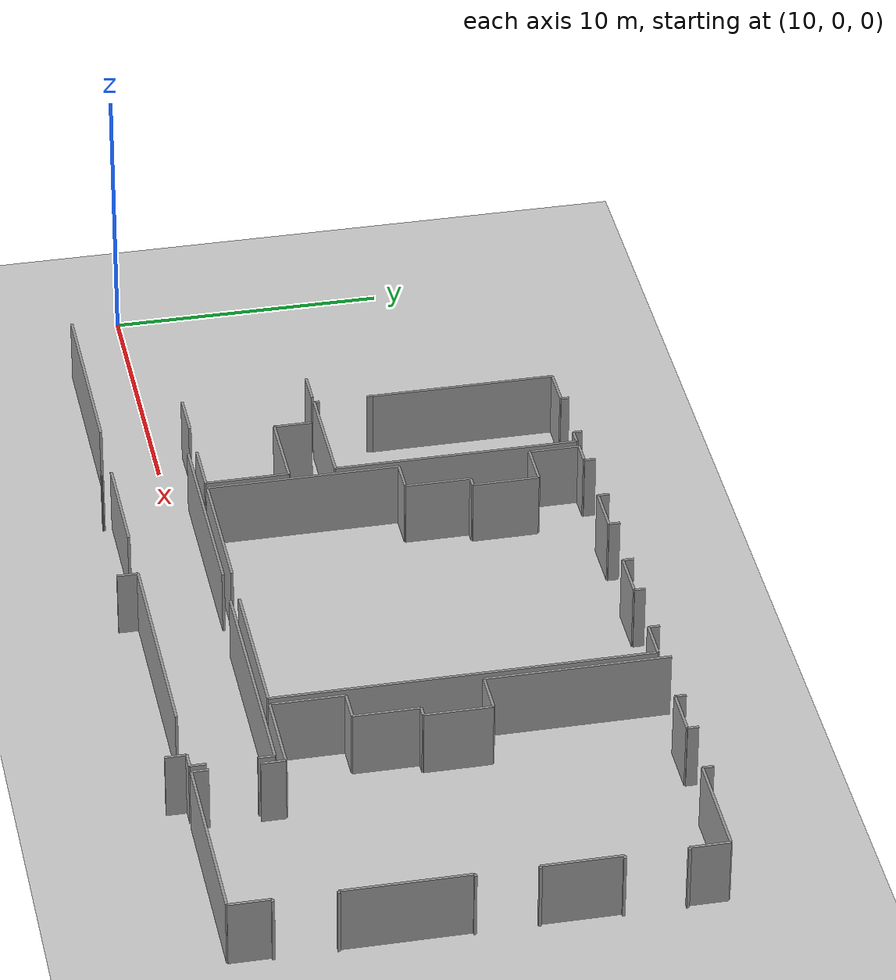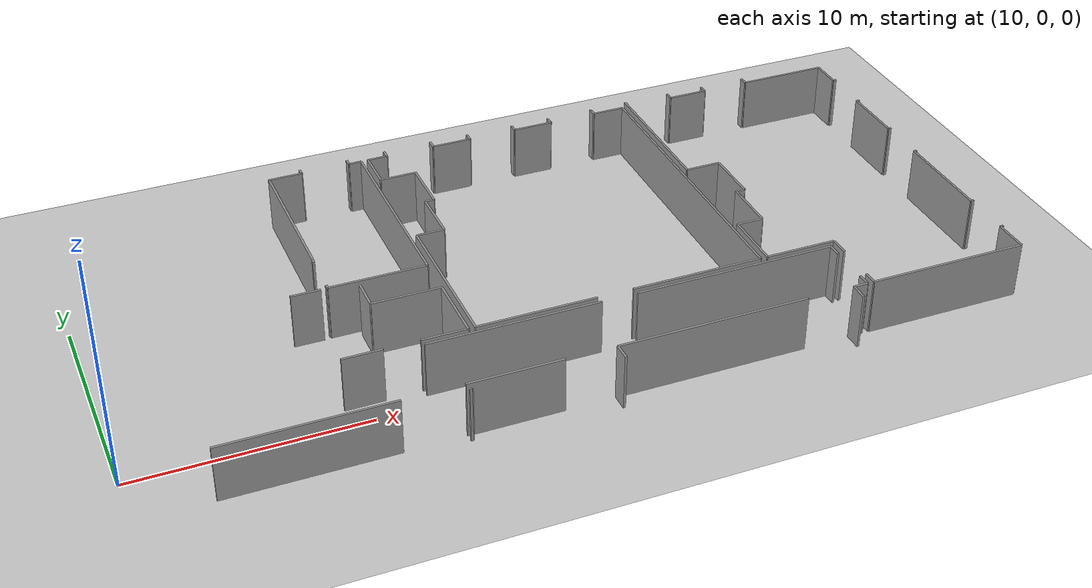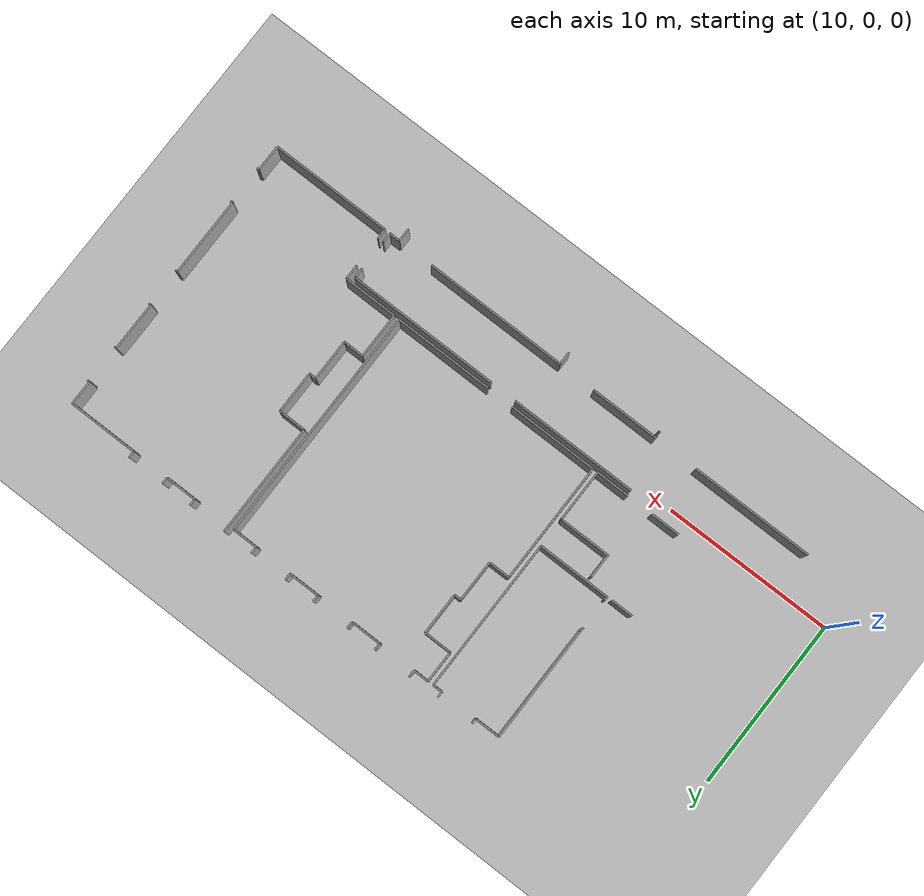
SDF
<sdf version="1.6">
 <world name="default">
  <model name="ground_plane">
   <static>1</static>
   <link name="link">
    <collision name="collision">
     <geometry><plane><normal>0 0 1</normal><size>100 100</size></plane></geometry>
     <surface><friction><ode><mu>100</mu><mu2>50</mu2></ode></friction></surface>
    </collision>
    <visual name="visual">
     <cast_shadows>0</cast_shadows>
     <geometry><plane><normal>0 0 1</normal><size>100 100</size></plane></geometry>
     <material>
      <script><uri>file://media/materials/scripts/gazebo.material</uri><name>Gazebo/Grey</name></script>
     </material>
    </visual>
   </link>
  </model>
  <model name="0510032270_A_40_1_104">
   <static>1</static>
   <link name="Wall_315">
    <collision name="Wall_315_Collision">
     <geometry><box><size>0.0939044690395 0.1 2.5</size></box></geometry>
     <pose>0.0469522345197 0 1.25 0 0 0</pose>
    </collision>
    <visual name="Wall_315_Visual">
     <pose>0.0469522345197 0 1.25 0 0 0</pose>
     <geometry><box><size>0.0939044690395 0.1 2.5</size></box></geometry>
     <material>
      <script><uri>file://media/materials/scripts/gazebo.material</uri><name>Gazebo/Grey</name></script>
      <ambient>1 1 1 1</ambient>
     </material>
    </visual>
    <pose>70.7474236629 -17.7504860414 0 0 0 0.0</pose>
   </link>
   <link name="Wall_316">
    <collision name="Wall_316_Collision">
     <geometry><box><size>0.0261763472559 0.1 2.5</size></box></geometry>
     <pose>0.013088173628 0 1.25 0 0 0</pose>
    </collision>
    <visual name="Wall_316_Visual">
     <pose>0.013088173628 0 1.25 0 0 0</pose>
     <geometry><box><size>0.0261763472559 0.1 2.5</size></box></geometry>
     <material>
      <script><uri>file://media/materials/scripts/gazebo.material</uri><name>Gazebo/Grey</name></script>
      <ambient>1 1 1 1</ambient>
     </material>
    </visual>
    <pose>70.8413281319 -17.7504860414 0 0 0 -1.57079632679</pose>
   </link>
   <link name="Wall_379">
    <collision name="Wall_379_Collision">
     <geometry><box><size>2.6602030573 0.1 2.5</size></box></geometry>
     <pose>1.33010152865 0 1.25 0 0 0</pose>
    </collision>
    <visual name="Wall_379_Visual">
     <pose>1.33010152865 0 1.25 0 0 0</pose>
     <geometry><box><size>2.6602030573 0.1 2.5</size></box></geometry>
     <material>
      <script><uri>file://media/materials/scripts/gazebo.material</uri><name>Gazebo/Grey</name></script>
      <ambient>1 1 1 1</ambient>
     </material>
    </visual>
    <pose>85.2550923161 -14.1554315921 0 0 0 1.57079632679</pose>
   </link>
   <link name="Wall_380">
    <collision name="Wall_380_Collision">
     <geometry><box><size>1.18162064628 0.1 2.5</size></box></geometry>
     <pose>0.590810323138 0 1.25 0 0 0</pose>
    </collision>
    <visual name="Wall_380_Visual">
     <pose>0.590810323138 0 1.25 0 0 0</pose>
     <geometry><box><size>1.18162064628 0.1 2.5</size></box></geometry>
     <material>
      <script><uri>file://media/materials/scripts/gazebo.material</uri><name>Gazebo/Grey</name></script>
      <ambient>1 1 1 1</ambient>
     </material>
    </visual>
    <pose>85.2550923161 -11.4952285348 0 0 0 0.0</pose>
   </link>
   <link name="Wall_381">
    <collision name="Wall_381_Collision">
     <geometry><box><size>2.3980583758 0.1 2.5</size></box></geometry>
     <pose>1.1990291879 0 1.25 0 0 0</pose>
    </collision>
    <visual name="Wall_381_Visual">
     <pose>1.1990291879 0 1.25 0 0 0</pose>
     <geometry><box><size>2.3980583758 0.1 2.5</size></box></geometry>
     <material>
      <script><uri>file://media/materials/scripts/gazebo.material</uri><name>Gazebo/Grey</name></script>
      <ambient>1 1 1 1</ambient>
     </material>
    </visual>
    <pose>86.4367129624 -11.4952285348 0 0 0 1.57079632679</pose>
   </link>
   <link name="Wall_382">
    <collision name="Wall_382_Collision">
     <geometry><box><size>0.401158875179 0.1 2.5</size></box></geometry>
     <pose>0.20057943759 0 1.25 0 0 0</pose>
    </collision>
    <visual name="Wall_382_Visual">
     <pose>0.20057943759 0 1.25 0 0 0</pose>
     <geometry><box><size>0.401158875179 0.1 2.5</size></box></geometry>
     <material>
      <script><uri>file://media/materials/scripts/gazebo.material</uri><name>Gazebo/Grey</name></script>
      <ambient>1 1 1 1</ambient>
     </material>
    </visual>
    <pose>86.4367129624 -9.09717015896 0 0 0 0.0</pose>
   </link>
   <link name="Wall_383">
    <collision name="Wall_383_Collision">
     <geometry><box><size>2.4509193489 0.1 2.5</size></box></geometry>
     <pose>1.22545967445 0 1.25 0 0 0</pose>
    </collision>
    <visual name="Wall_383_Visual">
     <pose>1.22545967445 0 1.25 0 0 0</pose>
     <geometry><box><size>2.4509193489 0.1 2.5</size></box></geometry>
     <material>
      <script><uri>file://media/materials/scripts/gazebo.material</uri><name>Gazebo/Grey</name></script>
      <ambient>1 1 1 1</ambient>
     </material>
    </visual>
    <pose>86.8378718376 -9.09717015896 0 0 0 1.57079632679</pose>
   </link>
   <link name="Wall_384">
    <collision name="Wall_384_Collision">
     <geometry><box><size>1.58252538216 0.1 2.5</size></box></geometry>
     <pose>0.791262691081 0 1.25 0 0 0</pose>
    </collision>
    <visual name="Wall_384_Visual">
     <pose>0.791262691081 0 1.25 0 0 0</pose>
     <geometry><box><size>1.58252538216 0.1 2.5</size></box></geometry>
     <material>
      <script><uri>file://media/materials/scripts/gazebo.material</uri><name>Gazebo/Grey</name></script>
      <ambient>1 1 1 1</ambient>
     </material>
    </visual>
    <pose>86.8378718376 -6.64625081007 0 0 0 3.14159265359</pose>
   </link>
   <link name="Wall_385">
    <collision name="Wall_385_Collision">
     <geometry><box><size>6.63240021856 0.1 2.5</size></box></geometry>
     <pose>3.31620010928 0 1.25 0 0 0</pose>
    </collision>
    <visual name="Wall_385_Visual">
     <pose>3.31620010928 0 1.25 0 0 0</pose>
     <geometry><box><size>6.63240021856 0.1 2.5</size></box></geometry>
     <material>
      <script><uri>file://media/materials/scripts/gazebo.material</uri><name>Gazebo/Grey</name></script>
      <ambient>1 1 1 1</ambient>
     </material>
    </visual>
    <pose>85.2553464554 -6.64625081007 0 0 0 1.57079632679</pose>
   </link>
   <link name="Wall_386">
    <collision name="Wall_386_Collision">
     <geometry><box><size>0.392645208839 0.1 2.5</size></box></geometry>
     <pose>0.196322604419 0 1.25 0 0 0</pose>
    </collision>
    <visual name="Wall_386_Visual">
     <pose>0.196322604419 0 1.25 0 0 0</pose>
     <geometry><box><size>0.392645208839 0.1 2.5</size></box></geometry>
     <material>
      <script><uri>file://media/materials/scripts/gazebo.material</uri><name>Gazebo/Grey</name></script>
      <ambient>1 1 1 1</ambient>
     </material>
    </visual>
    <pose>87.4634357091 -0.0138505915092 0 0 0 -1.57079632679</pose>
   </link>
   <link name="Wall_387">
    <collision name="Wall_387_Collision">
     <geometry><box><size>1.80286414984 0.1 2.5</size></box></geometry>
     <pose>0.90143207492 0 1.25 0 0 0</pose>
    </collision>
    <visual name="Wall_387_Visual">
     <pose>0.90143207492 0 1.25 0 0 0</pose>
     <geometry><box><size>1.80286414984 0.1 2.5</size></box></geometry>
     <material>
      <script><uri>file://media/materials/scripts/gazebo.material</uri><name>Gazebo/Grey</name></script>
      <ambient>1 1 1 1</ambient>
     </material>
    </visual>
    <pose>87.4634357091 -0.406495800348 0 0 0 0.0</pose>
   </link>
   <link name="Wall_388">
    <collision name="Wall_388_Collision">
     <geometry><box><size>0.398998691183 0.1 2.5</size></box></geometry>
     <pose>0.199499345591 0 1.25 0 0 0</pose>
    </collision>
    <visual name="Wall_388_Visual">
     <pose>0.199499345591 0 1.25 0 0 0</pose>
     <geometry><box><size>0.398998691183 0.1 2.5</size></box></geometry>
     <material>
      <script><uri>file://media/materials/scripts/gazebo.material</uri><name>Gazebo/Grey</name></script>
      <ambient>1 1 1 1</ambient>
     </material>
    </visual>
    <pose>89.266299859 -0.406495800348 0 0 0 1.57079632679</pose>
   </link>
   <link name="Wall_389">
    <collision name="Wall_389_Collision">
     <geometry><box><size>0.398490412595 0.1 2.5</size></box></geometry>
     <pose>0.199245206298 0 1.25 0 0 0</pose>
    </collision>
    <visual name="Wall_389_Visual">
     <pose>0.199245206298 0 1.25 0 0 0</pose>
     <geometry><box><size>0.398490412595 0.1 2.5</size></box></geometry>
     <material>
      <script><uri>file://media/materials/scripts/gazebo.material</uri><name>Gazebo/Grey</name></script>
      <ambient>1 1 1 1</ambient>
     </material>
    </visual>
    <pose>91.4592678247 -0.00749710916553 0 0 0 -1.57079632679</pose>
   </link>
   <link name="Wall_390">
    <collision name="Wall_390_Collision">
     <geometry><box><size>4.04081477058 0.1 2.5</size></box></geometry>
     <pose>2.02040738529 0 1.25 0 0 0</pose>
    </collision>
    <visual name="Wall_390_Visual">
     <pose>2.02040738529 0 1.25 0 0 0</pose>
     <geometry><box><size>4.04081477058 0.1 2.5</size></box></geometry>
     <material>
      <script><uri>file://media/materials/scripts/gazebo.material</uri><name>Gazebo/Grey</name></script>
      <ambient>1 1 1 1</ambient>
     </material>
    </visual>
    <pose>91.4592678247 -0.405987521761 0 0 0 0.0</pose>
   </link>
   <link name="Wall_391">
    <collision name="Wall_391_Collision">
     <geometry><box><size>1.42610264686 0.1 2.5</size></box></geometry>
     <pose>0.71305132343 0 1.25 0 0 0</pose>
    </collision>
    <visual name="Wall_391_Visual">
     <pose>0.71305132343 0 1.25 0 0 0</pose>
     <geometry><box><size>1.42610264686 0.1 2.5</size></box></geometry>
     <material>
      <script><uri>file://media/materials/scripts/gazebo.material</uri><name>Gazebo/Grey</name></script>
      <ambient>1 1 1 1</ambient>
     </material>
    </visual>
    <pose>95.5000825953 -0.405987521761 0 0 0 -1.57079632679</pose>
   </link>
   <link name="Wall_392">
    <collision name="Wall_392_Collision">
     <geometry><box><size>0.149306835076 0.1 2.5</size></box></geometry>
     <pose>0.0746534175382 0 1.25 0 0 0</pose>
    </collision>
    <visual name="Wall_392_Visual">
     <pose>0.0746534175382 0 1.25 0 0 0</pose>
     <geometry><box><size>0.149306835076 0.1 2.5</size></box></geometry>
     <material>
      <script><uri>file://media/materials/scripts/gazebo.material</uri><name>Gazebo/Grey</name></script>
      <ambient>1 1 1 1</ambient>
     </material>
    </visual>
    <pose>95.5000825953 -1.83209016862 0 0 0 0.0</pose>
   </link>
   <link name="Wall_393">
    <collision name="Wall_393_Collision">
     <geometry><box><size>0.144859397436 0.1 2.5</size></box></geometry>
     <pose>0.0724296987179 0 1.25 0 0 0</pose>
    </collision>
    <visual name="Wall_393_Visual">
     <pose>0.0724296987179 0 1.25 0 0 0</pose>
     <geometry><box><size>0.144859397436 0.1 2.5</size></box></geometry>
     <material>
      <script><uri>file://media/materials/scripts/gazebo.material</uri><name>Gazebo/Grey</name></script>
      <ambient>1 1 1 1</ambient>
     </material>
    </visual>
    <pose>95.6493894303 -4.03611319364 0 0 0 3.14159265359</pose>
   </link>
   <link name="Wall_394">
    <collision name="Wall_394_Collision">
     <geometry><box><size>2.85360305984 0.1 2.5</size></box></geometry>
     <pose>1.42680152992 0 1.25 0 0 0</pose>
    </collision>
    <visual name="Wall_394_Visual">
     <pose>1.42680152992 0 1.25 0 0 0</pose>
     <geometry><box><size>2.85360305984 0.1 2.5</size></box></geometry>
     <material>
      <script><uri>file://media/materials/scripts/gazebo.material</uri><name>Gazebo/Grey</name></script>
      <ambient>1 1 1 1</ambient>
     </material>
    </visual>
    <pose>95.5045300329 -4.03611319364 0 0 0 -1.57079632679</pose>
   </link>
   <link name="Wall_395">
    <collision name="Wall_395_Collision">
     <geometry><box><size>0.137489357917 0.1 2.5</size></box></geometry>
     <pose>0.0687446789585 0 1.25 0 0 0</pose>
    </collision>
    <visual name="Wall_395_Visual">
     <pose>0.0687446789585 0 1.25 0 0 0</pose>
     <geometry><box><size>0.137489357917 0.1 2.5</size></box></geometry>
     <material>
      <script><uri>file://media/materials/scripts/gazebo.material</uri><name>Gazebo/Grey</name></script>
      <ambient>1 1 1 1</ambient>
     </material>
    </visual>
    <pose>95.5045300329 -6.88971625348 0 0 0 0.0</pose>
   </link>
   <link name="Wall_396">
    <collision name="Wall_396_Collision">
     <geometry><box><size>0.137235218623 0.1 2.5</size></box></geometry>
     <pose>0.0686176093117 0 1.25 0 0 0</pose>
    </collision>
    <visual name="Wall_396_Visual">
     <pose>0.0686176093117 0 1.25 0 0 0</pose>
     <geometry><box><size>0.137235218623 0.1 2.5</size></box></geometry>
     <material>
      <script><uri>file://media/materials/scripts/gazebo.material</uri><name>Gazebo/Grey</name></script>
      <ambient>1 1 1 1</ambient>
     </material>
    </visual>
    <pose>95.6420193908 -9.09310393026 0 0 0 3.14159265359</pose>
   </link>
   <link name="Wall_397">
    <collision name="Wall_397_Collision">
     <geometry><box><size>4.58073370014 0.1 2.5</size></box></geometry>
     <pose>2.29036685007 0 1.25 0 0 0</pose>
    </collision>
    <visual name="Wall_397_Visual">
     <pose>2.29036685007 0 1.25 0 0 0</pose>
     <geometry><box><size>4.58073370014 0.1 2.5</size></box></geometry>
     <material>
      <script><uri>file://media/materials/scripts/gazebo.material</uri><name>Gazebo/Grey</name></script>
      <ambient>1 1 1 1</ambient>
     </material>
    </visual>
    <pose>95.5047841722 -9.09310393026 0 0 0 -1.57079632679</pose>
   </link>
   <link name="Wall_398">
    <collision name="Wall_398_Collision">
     <geometry><box><size>0.137743497211 0.1 2.5</size></box></geometry>
     <pose>0.0688717486054 0 1.25 0 0 0</pose>
    </collision>
    <visual name="Wall_398_Visual">
     <pose>0.0688717486054 0 1.25 0 0 0</pose>
     <geometry><box><size>0.137743497211 0.1 2.5</size></box></geometry>
     <material>
      <script><uri>file://media/materials/scripts/gazebo.material</uri><name>Gazebo/Grey</name></script>
      <ambient>1 1 1 1</ambient>
     </material>
    </visual>
    <pose>95.5047841722 -13.6738376304 0 0 0 0.0</pose>
   </link>
   <link name="Wall_399">
    <collision name="Wall_399_Collision">
     <geometry><box><size>0.139903681208 0.1 2.5</size></box></geometry>
     <pose>0.0699518406038 0 1.25 0 0 0</pose>
    </collision>
    <visual name="Wall_399_Visual">
     <pose>0.0699518406038 0 1.25 0 0 0</pose>
     <geometry><box><size>0.139903681208 0.1 2.5</size></box></geometry>
     <material>
      <script><uri>file://media/materials/scripts/gazebo.material</uri><name>Gazebo/Grey</name></script>
      <ambient>1 1 1 1</ambient>
     </material>
    </visual>
    <pose>95.6425276694 -15.8800208394 0 0 0 3.14159265359</pose>
   </link>
   <link name="Wall_400">
    <collision name="Wall_400_Collision">
     <geometry><box><size>1.52267557848 0.1 2.5</size></box></geometry>
     <pose>0.761337789242 0 1.25 0 0 0</pose>
    </collision>
    <visual name="Wall_400_Visual">
     <pose>0.761337789242 0 1.25 0 0 0</pose>
     <geometry><box><size>1.52267557848 0.1 2.5</size></box></geometry>
     <material>
      <script><uri>file://media/materials/scripts/gazebo.material</uri><name>Gazebo/Grey</name></script>
      <ambient>1 1 1 1</ambient>
     </material>
    </visual>
    <pose>95.5026239882 -15.8800208394 0 0 0 -1.57079632679</pose>
   </link>
   <link name="Wall_401">
    <collision name="Wall_401_Collision">
     <geometry><box><size>7.10281205129 0.1 2.5</size></box></geometry>
     <pose>3.55140602564 0 1.25 0 0 0</pose>
    </collision>
    <visual name="Wall_401_Visual">
     <pose>3.55140602564 0 1.25 0 0 0</pose>
     <geometry><box><size>7.10281205129 0.1 2.5</size></box></geometry>
     <material>
      <script><uri>file://media/materials/scripts/gazebo.material</uri><name>Gazebo/Grey</name></script>
      <ambient>1 1 1 1</ambient>
     </material>
    </visual>
    <pose>95.5026239882 -17.4026964179 0 0 0 3.14159265359</pose>
   </link>
   <link name="Wall_402">
    <collision name="Wall_402_Collision">
     <geometry><box><size>0.601293569005 0.1 2.5</size></box></geometry>
     <pose>0.300646784503 0 1.25 0 0 0</pose>
    </collision>
    <visual name="Wall_402_Visual">
     <pose>0.300646784503 0 1.25 0 0 0</pose>
     <geometry><box><size>0.601293569005 0.1 2.5</size></box></geometry>
     <material>
      <script><uri>file://media/materials/scripts/gazebo.material</uri><name>Gazebo/Grey</name></script>
      <ambient>1 1 1 1</ambient>
     </material>
    </visual>
    <pose>88.3998119369 -17.4026964179 0 0 0 1.57079632679</pose>
   </link>
   <link name="Wall_403">
    <collision name="Wall_403_Collision">
     <geometry><box><size>0.869537593555 0.1 2.5</size></box></geometry>
     <pose>0.434768796778 0 1.25 0 0 0</pose>
    </collision>
    <visual name="Wall_403_Visual">
     <pose>0.434768796778 0 1.25 0 0 0</pose>
     <geometry><box><size>0.869537593555 0.1 2.5</size></box></geometry>
     <material>
      <script><uri>file://media/materials/scripts/gazebo.material</uri><name>Gazebo/Grey</name></script>
      <ambient>1 1 1 1</ambient>
     </material>
    </visual>
    <pose>88.3998119369 -15.0268752303 0 0 0 1.57079632679</pose>
   </link>
   <link name="Wall_404">
    <collision name="Wall_404_Collision">
     <geometry><box><size>3.14472019846 0.1 2.5</size></box></geometry>
     <pose>1.57236009923 0 1.25 0 0 0</pose>
    </collision>
    <visual name="Wall_404_Visual">
     <pose>1.57236009923 0 1.25 0 0 0</pose>
     <geometry><box><size>3.14472019846 0.1 2.5</size></box></geometry>
     <material>
      <script><uri>file://media/materials/scripts/gazebo.material</uri><name>Gazebo/Grey</name></script>
      <ambient>1 1 1 1</ambient>
     </material>
    </visual>
    <pose>88.3998119369 -14.1573376368 0 0 0 3.14098654408</pose>
   </link>
   <link name="Wall_405">
    <collision name="Wall_405_Collision">
     <geometry><box><size>7.04385173514 0.1 2.5</size></box></geometry>
     <pose>3.52192586757 0 1.25 0 0 0</pose>
    </collision>
    <visual name="Wall_405_Visual">
     <pose>3.52192586757 0 1.25 0 0 0</pose>
     <geometry><box><size>7.04385173514 0.1 2.5</size></box></geometry>
     <material>
      <script><uri>file://media/materials/scripts/gazebo.material</uri><name>Gazebo/Grey</name></script>
      <ambient>1 1 1 1</ambient>
     </material>
    </visual>
    <pose>72.3413853133 -14.1513653634 0 0 0 1.57079632679</pose>
   </link>
   <link name="Wall_406">
    <collision name="Wall_406_Collision">
     <geometry><box><size>1.23498989796 0.1 2.5</size></box></geometry>
     <pose>0.617494948982 0 1.25 0 0 0</pose>
    </collision>
    <visual name="Wall_406_Visual">
     <pose>0.617494948982 0 1.25 0 0 0</pose>
     <geometry><box><size>1.23498989796 0.1 2.5</size></box></geometry>
     <material>
      <script><uri>file://media/materials/scripts/gazebo.material</uri><name>Gazebo/Grey</name></script>
      <ambient>1 1 1 1</ambient>
     </material>
    </visual>
    <pose>72.3413853133 -7.10751362822 0 0 0 0.0</pose>
   </link>
   <link name="Wall_407">
    <collision name="Wall_407_Collision">
     <geometry><box><size>2.40504720637 0.1 2.5</size></box></geometry>
     <pose>1.20252360319 0 1.25 0 0 0</pose>
    </collision>
    <visual name="Wall_407_Visual">
     <pose>1.20252360319 0 1.25 0 0 0</pose>
     <geometry><box><size>2.40504720637 0.1 2.5</size></box></geometry>
     <material>
      <script><uri>file://media/materials/scripts/gazebo.material</uri><name>Gazebo/Grey</name></script>
      <ambient>1 1 1 1</ambient>
     </material>
    </visual>
    <pose>73.5763752113 -7.10751362822 0 0 0 1.57079632679</pose>
   </link>
   <link name="Wall_408">
    <collision name="Wall_408_Collision">
     <geometry><box><size>0.396584367892 0.1 2.5</size></box></geometry>
     <pose>0.198292183946 0 1.25 0 0 0</pose>
    </collision>
    <visual name="Wall_408_Visual">
     <pose>0.198292183946 0 1.25 0 0 0</pose>
     <geometry><box><size>0.396584367892 0.1 2.5</size></box></geometry>
     <material>
      <script><uri>file://media/materials/scripts/gazebo.material</uri><name>Gazebo/Grey</name></script>
      <ambient>1 1 1 1</ambient>
     </material>
    </visual>
    <pose>73.5763752113 -4.70246642185 0 0 0 0.0</pose>
   </link>
   <link name="Wall_409">
    <collision name="Wall_409_Collision">
     <geometry><box><size>2.43414615551 0.1 2.5</size></box></geometry>
     <pose>1.21707307775 0 1.25 0 0 0</pose>
    </collision>
    <visual name="Wall_409_Visual">
     <pose>1.21707307775 0 1.25 0 0 0</pose>
     <geometry><box><size>2.43414615551 0.1 2.5</size></box></geometry>
     <material>
      <script><uri>file://media/materials/scripts/gazebo.material</uri><name>Gazebo/Grey</name></script>
      <ambient>1 1 1 1</ambient>
     </material>
    </visual>
    <pose>73.9729595791 -4.70246642185 0 0 0 1.57079632679</pose>
   </link>
   <link name="Wall_410">
    <collision name="Wall_410_Collision">
     <geometry><box><size>1.62611027104 0.1 2.5</size></box></geometry>
     <pose>0.81305513552 0 1.25 0 0 0</pose>
    </collision>
    <visual name="Wall_410_Visual">
     <pose>0.81305513552 0 1.25 0 0 0</pose>
     <geometry><box><size>1.62611027104 0.1 2.5</size></box></geometry>
     <material>
      <script><uri>file://media/materials/scripts/gazebo.material</uri><name>Gazebo/Grey</name></script>
      <ambient>1 1 1 1</ambient>
     </material>
    </visual>
    <pose>73.9729595791 -2.26832026634 0 0 0 3.14159265359</pose>
   </link>
   <link name="Wall_411">
    <collision name="Wall_411_Collision">
     <geometry><box><size>1.85076940671 0.1 2.5</size></box></geometry>
     <pose>0.925384703356 0 1.25 0 0 0</pose>
    </collision>
    <visual name="Wall_411_Visual">
     <pose>0.925384703356 0 1.25 0 0 0</pose>
     <geometry><box><size>1.85076940671 0.1 2.5</size></box></geometry>
     <material>
      <script><uri>file://media/materials/scripts/gazebo.material</uri><name>Gazebo/Grey</name></script>
      <ambient>1 1 1 1</ambient>
     </material>
    </visual>
    <pose>72.3468493081 -2.26832026634 0 0 0 1.57079632679</pose>
   </link>
   <link name="Wall_412">
    <collision name="Wall_412_Collision">
     <geometry><box><size>0.895459801517 0.1 2.5</size></box></geometry>
     <pose>0.447729900759 0 1.25 0 0 0</pose>
    </collision>
    <visual name="Wall_412_Visual">
     <pose>0.447729900759 0 1.25 0 0 0</pose>
     <geometry><box><size>0.895459801517 0.1 2.5</size></box></geometry>
     <material>
      <script><uri>file://media/materials/scripts/gazebo.material</uri><name>Gazebo/Grey</name></script>
      <ambient>1 1 1 1</ambient>
     </material>
    </visual>
    <pose>72.3468493081 -0.417550859626 0 0 0 0.0</pose>
   </link>
   <link name="Wall_413">
    <collision name="Wall_413_Collision">
     <geometry><box><size>0.417550859626 0.1 2.5</size></box></geometry>
     <pose>0.208775429813 0 1.25 0 0 0</pose>
    </collision>
    <visual name="Wall_413_Visual">
     <pose>0.208775429813 0 1.25 0 0 0</pose>
     <geometry><box><size>0.417550859626 0.1 2.5</size></box></geometry>
     <material>
      <script><uri>file://media/materials/scripts/gazebo.material</uri><name>Gazebo/Grey</name></script>
      <ambient>1 1 1 1</ambient>
     </material>
    </visual>
    <pose>73.2423091096 -0.417550859626 0 0 0 1.57079632679</pose>
   </link>
   <link name="Wall_414">
    <collision name="Wall_414_Collision">
     <geometry><box><size>0.413357561279 0.1 2.5</size></box></geometry>
     <pose>0.20667878064 0 1.25 0 0 0</pose>
    </collision>
    <visual name="Wall_414_Visual">
     <pose>0.20667878064 0 1.25 0 0 0</pose>
     <geometry><box><size>0.413357561279 0.1 2.5</size></box></geometry>
     <material>
      <script><uri>file://media/materials/scripts/gazebo.material</uri><name>Gazebo/Grey</name></script>
      <ambient>1 1 1 1</ambient>
     </material>
    </visual>
    <pose>75.4615804923 -0.0 0 0 0 -1.57079632679</pose>
   </link>
   <link name="Wall_415">
    <collision name="Wall_415_Collision">
     <geometry><box><size>1.78202472775 0.1 2.5</size></box></geometry>
     <pose>0.891012363877 0 1.25 0 0 0</pose>
    </collision>
    <visual name="Wall_415_Visual">
     <pose>0.891012363877 0 1.25 0 0 0</pose>
     <geometry><box><size>1.78202472775 0.1 2.5</size></box></geometry>
     <material>
      <script><uri>file://media/materials/scripts/gazebo.material</uri><name>Gazebo/Grey</name></script>
      <ambient>1 1 1 1</ambient>
     </material>
    </visual>
    <pose>75.4615804923 -0.413357561279 0 0 0 0.0</pose>
   </link>
   <link name="Wall_416">
    <collision name="Wall_416_Collision">
     <geometry><box><size>0.402937850236 0.1 2.5</size></box></geometry>
     <pose>0.201468925118 0 1.25 0 0 0</pose>
    </collision>
    <visual name="Wall_416_Visual">
     <pose>0.201468925118 0 1.25 0 0 0</pose>
     <geometry><box><size>0.402937850236 0.1 2.5</size></box></geometry>
     <material>
      <script><uri>file://media/materials/scripts/gazebo.material</uri><name>Gazebo/Grey</name></script>
      <ambient>1 1 1 1</ambient>
     </material>
    </visual>
    <pose>77.24360522 -0.413357561279 0 0 0 1.57079632679</pose>
   </link>
   <link name="Wall_417">
    <collision name="Wall_417_Collision">
     <geometry><box><size>0.39912576083 0.1 2.5</size></box></geometry>
     <pose>0.199562880415 0 1.25 0 0 0</pose>
    </collision>
    <visual name="Wall_417_Visual">
     <pose>0.199562880415 0 1.25 0 0 0</pose>
     <geometry><box><size>0.39912576083 0.1 2.5</size></box></geometry>
     <material>
      <script><uri>file://media/materials/scripts/gazebo.material</uri><name>Gazebo/Grey</name></script>
      <ambient>1 1 1 1</ambient>
     </material>
    </visual>
    <pose>79.4525839613 -0.0104197110436 0 0 0 -1.57079632679</pose>
   </link>
   <link name="Wall_418">
    <collision name="Wall_418_Collision">
     <geometry><box><size>1.80362656772 0.1 2.5</size></box></geometry>
     <pose>0.901813283861 0 1.25 0 0 0</pose>
    </collision>
    <visual name="Wall_418_Visual">
     <pose>0.901813283861 0 1.25 0 0 0</pose>
     <geometry><box><size>1.80362656772 0.1 2.5</size></box></geometry>
     <material>
      <script><uri>file://media/materials/scripts/gazebo.material</uri><name>Gazebo/Grey</name></script>
      <ambient>1 1 1 1</ambient>
     </material>
    </visual>
    <pose>79.4525839613 -0.409545471873 0 0 0 0.0</pose>
   </link>
   <link name="Wall_419">
    <collision name="Wall_419_Collision">
     <geometry><box><size>0.39912576083 0.1 2.5</size></box></geometry>
     <pose>0.199562880415 0 1.25 0 0 0</pose>
    </collision>
    <visual name="Wall_419_Visual">
     <pose>0.199562880415 0 1.25 0 0 0</pose>
     <geometry><box><size>0.39912576083 0.1 2.5</size></box></geometry>
     <material>
      <script><uri>file://media/materials/scripts/gazebo.material</uri><name>Gazebo/Grey</name></script>
      <ambient>1 1 1 1</ambient>
     </material>
    </visual>
    <pose>81.256210529 -0.409545471873 0 0 0 1.57079632679</pose>
   </link>
   <link name="Wall_420">
    <collision name="Wall_420_Collision">
     <geometry><box><size>0.402937850236 0.1 2.5</size></box></geometry>
     <pose>0.201468925118 0 1.25 0 0 0</pose>
    </collision>
    <visual name="Wall_420_Visual">
     <pose>0.201468925118 0 1.25 0 0 0</pose>
     <geometry><box><size>0.402937850236 0.1 2.5</size></box></geometry>
     <material>
      <script><uri>file://media/materials/scripts/gazebo.material</uri><name>Gazebo/Grey</name></script>
      <ambient>1 1 1 1</ambient>
     </material>
    </visual>
    <pose>83.4620125291 -0.0104197110436 0 0 0 -1.57079632679</pose>
   </link>
   <link name="Wall_421">
    <collision name="Wall_421_Collision">
     <geometry><box><size>1.46511302845 0.1 2.5</size></box></geometry>
     <pose>0.732556514225 0 1.25 0 0 0</pose>
    </collision>
    <visual name="Wall_421_Visual">
     <pose>0.732556514225 0 1.25 0 0 0</pose>
     <geometry><box><size>1.46511302845 0.1 2.5</size></box></geometry>
     <material>
      <script><uri>file://media/materials/scripts/gazebo.material</uri><name>Gazebo/Grey</name></script>
      <ambient>1 1 1 1</ambient>
     </material>
    </visual>
    <pose>83.4620125291 -0.413357561279 0 0 0 0.0</pose>
   </link>
   <link name="Wall_422">
    <collision name="Wall_422_Collision">
     <geometry><box><size>13.7371183145 0.1 2.5</size></box></geometry>
     <pose>6.86855915727 0 1.25 0 0 0</pose>
    </collision>
    <visual name="Wall_422_Visual">
     <pose>6.86855915727 0 1.25 0 0 0</pose>
     <geometry><box><size>13.7371183145 0.1 2.5</size></box></geometry>
     <material>
      <script><uri>file://media/materials/scripts/gazebo.material</uri><name>Gazebo/Grey</name></script>
      <ambient>1 1 1 1</ambient>
     </material>
    </visual>
    <pose>84.9271255575 -0.413357561279 0 0 0 -1.57079632679</pose>
   </link>
   <link name="Wall_423">
    <collision name="Wall_423_Collision">
     <geometry><box><size>5.78497274356 0.1 2.5</size></box></geometry>
     <pose>2.89248637178 0 1.25 0 0 0</pose>
    </collision>
    <visual name="Wall_423_Visual">
     <pose>2.89248637178 0 1.25 0 0 0</pose>
     <geometry><box><size>5.78497274356 0.1 2.5</size></box></geometry>
     <material>
      <script><uri>file://media/materials/scripts/gazebo.material</uri><name>Gazebo/Grey</name></script>
      <ambient>1 1 1 1</ambient>
     </material>
    </visual>
    <pose>84.9271255575 -14.1504758758 0 0 0 3.14159265359</pose>
   </link>
   <link name="Wall_424">
    <collision name="Wall_424_Collision">
     <geometry><box><size>5.2339988303 0.1 2.5</size></box></geometry>
     <pose>2.61699941515 0 1.25 0 0 0</pose>
    </collision>
    <visual name="Wall_424_Visual">
     <pose>2.61699941515 0 1.25 0 0 0</pose>
     <geometry><box><size>5.2339988303 0.1 2.5</size></box></geometry>
     <material>
      <script><uri>file://media/materials/scripts/gazebo.material</uri><name>Gazebo/Grey</name></script>
      <ambient>1 1 1 1</ambient>
     </material>
    </visual>
    <pose>77.575384068 -14.1504758758 0 0 0 -3.14142270943</pose>
   </link>
   <link name="Wall_465">
    <collision name="Wall_465_Collision">
     <geometry><box><size>1.2822598066 0.1 2.5</size></box></geometry>
     <pose>0.6411299033 0 1.25 0 0 0</pose>
    </collision>
    <visual name="Wall_465_Visual">
     <pose>0.6411299033 0 1.25 0 0 0</pose>
     <geometry><box><size>1.2822598066 0.1 2.5</size></box></geometry>
     <material>
      <script><uri>file://media/materials/scripts/gazebo.material</uri><name>Gazebo/Grey</name></script>
      <ambient>1 1 1 1</ambient>
     </material>
    </visual>
    <pose>67.4680102164 -9.4065847491 0 0 0 3.14159265359</pose>
   </link>
   <link name="Wall_470">
    <collision name="Wall_470_Collision">
     <geometry><box><size>6.78119877505 0.1 2.5</size></box></geometry>
     <pose>3.39059938752 0 1.25 0 0 0</pose>
    </collision>
    <visual name="Wall_470_Visual">
     <pose>3.39059938752 0 1.25 0 0 0</pose>
     <geometry><box><size>6.78119877505 0.1 2.5</size></box></geometry>
     <material>
      <script><uri>file://media/materials/scripts/gazebo.material</uri><name>Gazebo/Grey</name></script>
      <ambient>1 1 1 1</ambient>
     </material>
    </visual>
    <pose>67.7788225727 -7.19315857021 0 0 0 1.57079632679</pose>
   </link>
   <link name="Wall_471">
    <collision name="Wall_471_Collision">
     <geometry><box><size>1.48061552537 0.1 2.5</size></box></geometry>
     <pose>0.740307762685 0 1.25 0 0 0</pose>
    </collision>
    <visual name="Wall_471_Visual">
     <pose>0.740307762685 0 1.25 0 0 0</pose>
     <geometry><box><size>1.48061552537 0.1 2.5</size></box></geometry>
     <material>
      <script><uri>file://media/materials/scripts/gazebo.material</uri><name>Gazebo/Grey</name></script>
      <ambient>1 1 1 1</ambient>
     </material>
    </visual>
    <pose>67.7788225727 -0.411959795164 0 0 0 0.0</pose>
   </link>
   <link name="Wall_472">
    <collision name="Wall_472_Collision">
     <geometry><box><size>0.307635615081 0.1 2.5</size></box></geometry>
     <pose>0.15381780754 0 1.25 0 0 0</pose>
    </collision>
    <visual name="Wall_472_Visual">
     <pose>0.15381780754 0 1.25 0 0 0</pose>
     <geometry><box><size>0.307635615081 0.1 2.5</size></box></geometry>
     <material>
      <script><uri>file://media/materials/scripts/gazebo.material</uri><name>Gazebo/Grey</name></script>
      <ambient>1 1 1 1</ambient>
     </material>
    </visual>
    <pose>69.259438098 -0.411959795164 0 0 0 1.57079632679</pose>
   </link>
   <link name="Wall_473">
    <collision name="Wall_473_Collision">
     <geometry><box><size>0.325679504937 0.1 2.5</size></box></geometry>
     <pose>0.162839752468 0 1.25 0 0 0</pose>
    </collision>
    <visual name="Wall_473_Visual">
     <pose>0.162839752468 0 1.25 0 0 0</pose>
     <geometry><box><size>0.325679504937 0.1 2.5</size></box></geometry>
     <material>
      <script><uri>file://media/materials/scripts/gazebo.material</uri><name>Gazebo/Grey</name></script>
      <ambient>1 1 1 1</ambient>
     </material>
    </visual>
    <pose>71.453041412 -0.104324180083 0 0 0 -1.57079632679</pose>
   </link>
   <link name="Wall_474">
    <collision name="Wall_474_Collision">
     <geometry><box><size>0.573211177046 0.1 2.5</size></box></geometry>
     <pose>0.286605588523 0 1.25 0 0 0</pose>
    </collision>
    <visual name="Wall_474_Visual">
     <pose>0.286605588523 0 1.25 0 0 0</pose>
     <geometry><box><size>0.573211177046 0.1 2.5</size></box></geometry>
     <material>
      <script><uri>file://media/materials/scripts/gazebo.material</uri><name>Gazebo/Grey</name></script>
      <ambient>1 1 1 1</ambient>
     </material>
    </visual>
    <pose>71.453041412 -0.43000368502 0 0 0 0.0</pose>
   </link>
   <link name="Wall_475">
    <collision name="Wall_475_Collision">
     <geometry><box><size>8.96006200999 0.1 2.5</size></box></geometry>
     <pose>4.48003100499 0 1.25 0 0 0</pose>
    </collision>
    <visual name="Wall_475_Visual">
     <pose>4.48003100499 0 1.25 0 0 0</pose>
     <geometry><box><size>8.96006200999 0.1 2.5</size></box></geometry>
     <material>
      <script><uri>file://media/materials/scripts/gazebo.material</uri><name>Gazebo/Grey</name></script>
      <ambient>1 1 1 1</ambient>
     </material>
    </visual>
    <pose>72.026252589 -0.43000368502 0 0 0 -1.57079632679</pose>
   </link>
   <link name="Wall_476">
    <collision name="Wall_476_Collision">
     <geometry><box><size>4.26610925448 0.1 2.5</size></box></geometry>
     <pose>2.13305462724 0 1.25 0 0 0</pose>
    </collision>
    <visual name="Wall_476_Visual">
     <pose>2.13305462724 0 1.25 0 0 0</pose>
     <geometry><box><size>4.26610925448 0.1 2.5</size></box></geometry>
     <material>
      <script><uri>file://media/materials/scripts/gazebo.material</uri><name>Gazebo/Grey</name></script>
      <ambient>1 1 1 1</ambient>
     </material>
    </visual>
    <pose>72.026252589 -9.39006569501 0 0 0 3.14159265359</pose>
   </link>
   <link name="Wall_477">
    <collision name="Wall_477_Collision">
     <geometry><box><size>0.19225637572 0.1 2.5</size></box></geometry>
     <pose>0.0961281878598 0 1.25 0 0 0</pose>
    </collision>
    <visual name="Wall_477_Visual">
     <pose>0.0961281878598 0 1.25 0 0 0</pose>
     <geometry><box><size>0.19225637572 0.1 2.5</size></box></geometry>
     <material>
      <script><uri>file://media/materials/scripts/gazebo.material</uri><name>Gazebo/Grey</name></script>
      <ambient>1 1 1 1</ambient>
     </material>
    </visual>
    <pose>67.7601433346 -9.39006569501 0 0 0 1.57079632679</pose>
   </link>
   <link name="Wall_478">
    <collision name="Wall_478_Collision">
     <geometry><box><size>0.221129117209 0.1 2.5</size></box></geometry>
     <pose>0.110564558605 0 1.25 0 0 0</pose>
    </collision>
    <visual name="Wall_478_Visual">
     <pose>0.110564558605 0 1.25 0 0 0</pose>
     <geometry><box><size>0.221129117209 0.1 2.5</size></box></geometry>
     <material>
      <script><uri>file://media/materials/scripts/gazebo.material</uri><name>Gazebo/Grey</name></script>
      <ambient>1 1 1 1</ambient>
     </material>
    </visual>
    <pose>67.7601433346 -7.41349733789 0 0 0 1.48622345666</pose>
   </link>
   <link name="Wall_495">
    <collision name="Wall_495_Collision">
     <geometry><box><size>1.39497058338 0.1 2.5</size></box></geometry>
     <pose>0.697485291688 0 1.25 0 0 0</pose>
    </collision>
    <visual name="Wall_495_Visual">
     <pose>0.697485291688 0 1.25 0 0 0</pose>
     <geometry><box><size>1.39497058338 0.1 2.5</size></box></geometry>
     <material>
      <script><uri>file://media/materials/scripts/gazebo.material</uri><name>Gazebo/Grey</name></script>
      <ambient>1 1 1 1</ambient>
     </material>
    </visual>
    <pose>69.024486321 -9.70913757831 0 0 0 -1.57079632679</pose>
   </link>
   <link name="Wall_496">
    <collision name="Wall_496_Collision">
     <geometry><box><size>3.01510858101 0.1 2.5</size></box></geometry>
     <pose>1.50755429051 0 1.25 0 0 0</pose>
    </collision>
    <visual name="Wall_496_Visual">
     <pose>1.50755429051 0 1.25 0 0 0</pose>
     <geometry><box><size>3.01510858101 0.1 2.5</size></box></geometry>
     <material>
      <script><uri>file://media/materials/scripts/gazebo.material</uri><name>Gazebo/Grey</name></script>
      <ambient>1 1 1 1</ambient>
     </material>
    </visual>
    <pose>69.024486321 -11.1041081617 0 0 0 0.0</pose>
   </link>
   <link name="Wall_497">
    <collision name="Wall_497_Collision">
     <geometry><box><size>3.05386482331 0.1 2.5</size></box></geometry>
     <pose>1.52693241165 0 1.25 0 0 0</pose>
    </collision>
    <visual name="Wall_497_Visual">
     <pose>1.52693241165 0 1.25 0 0 0</pose>
     <geometry><box><size>3.05386482331 0.1 2.5</size></box></geometry>
     <material>
      <script><uri>file://media/materials/scripts/gazebo.material</uri><name>Gazebo/Grey</name></script>
      <ambient>1 1 1 1</ambient>
     </material>
    </visual>
    <pose>72.039594902 -11.1041081617 0 0 0 -1.57079632679</pose>
   </link>
   <link name="Wall_498">
    <collision name="Wall_498_Collision">
     <geometry><box><size>1.96322604419 0.1 2.5</size></box></geometry>
     <pose>0.981613022097 0 1.25 0 0 0</pose>
    </collision>
    <visual name="Wall_498_Visual">
     <pose>0.981613022097 0 1.25 0 0 0</pose>
     <geometry><box><size>1.96322604419 0.1 2.5</size></box></geometry>
     <material>
      <script><uri>file://media/materials/scripts/gazebo.material</uri><name>Gazebo/Grey</name></script>
      <ambient>1 1 1 1</ambient>
     </material>
    </visual>
    <pose>72.039594902 -14.157972985 0 0 0 3.14159265359</pose>
   </link>
   <link name="Wall_499">
    <collision name="Wall_499_Collision">
     <geometry><box><size>1.70732056175 0.1 2.5</size></box></geometry>
     <pose>0.853660280875 0 1.25 0 0 0</pose>
    </collision>
    <visual name="Wall_499_Visual">
     <pose>0.853660280875 0 1.25 0 0 0</pose>
     <geometry><box><size>1.70732056175 0.1 2.5</size></box></geometry>
     <material>
      <script><uri>file://media/materials/scripts/gazebo.material</uri><name>Gazebo/Grey</name></script>
      <ambient>1 1 1 1</ambient>
     </material>
    </visual>
    <pose>68.5431464986 -14.157972985 0 0 0 -3.13772247345</pose>
   </link>
   <link name="Wall_534">
    <collision name="Wall_534_Collision">
     <geometry><box><size>7.50752887658 0.1 2.5</size></box></geometry>
     <pose>3.75376443829 0 1.25 0 0 0</pose>
    </collision>
    <visual name="Wall_534_Visual">
     <pose>3.75376443829 0 1.25 0 0 0</pose>
     <geometry><box><size>7.50752887658 0.1 2.5</size></box></geometry>
     <material>
      <script><uri>file://media/materials/scripts/gazebo.material</uri><name>Gazebo/Grey</name></script>
      <ambient>1 1 1 1</ambient>
     </material>
    </visual>
    <pose>70.1158875179 -14.4737410575 0 0 0 0.0</pose>
   </link>
   <link name="Wall_535">
    <collision name="Wall_535_Collision">
     <geometry><box><size>8.89805202231 0.1 2.5</size></box></geometry>
     <pose>4.44902601116 0 1.25 0 0 0</pose>
    </collision>
    <visual name="Wall_535_Visual">
     <pose>4.44902601116 0 1.25 0 0 0</pose>
     <geometry><box><size>8.89805202231 0.1 2.5</size></box></geometry>
     <material>
      <script><uri>file://media/materials/scripts/gazebo.material</uri><name>Gazebo/Grey</name></script>
      <ambient>1 1 1 1</ambient>
     </material>
    </visual>
    <pose>79.184594076 -14.4737410575 0 0 0 0.0</pose>
   </link>
   <link name="Wall_536">
    <collision name="Wall_536_Collision">
     <geometry><box><size>0.593161111605 0.1 2.5</size></box></geometry>
     <pose>0.296580555803 0 1.25 0 0 0</pose>
    </collision>
    <visual name="Wall_536_Visual">
     <pose>0.296580555803 0 1.25 0 0 0</pose>
     <geometry><box><size>0.593161111605 0.1 2.5</size></box></geometry>
     <material>
      <script><uri>file://media/materials/scripts/gazebo.material</uri><name>Gazebo/Grey</name></script>
      <ambient>1 1 1 1</ambient>
     </material>
    </visual>
    <pose>88.0826460983 -14.4737410575 0 0 0 -1.57079632679</pose>
   </link>
   <link name="Wall_537">
    <collision name="Wall_537_Collision">
     <geometry><box><size>0.568128391171 0.1 2.5</size></box></geometry>
     <pose>0.284064195586 0 1.25 0 0 0</pose>
    </collision>
    <visual name="Wall_537_Visual">
     <pose>0.284064195586 0 1.25 0 0 0</pose>
     <geometry><box><size>0.568128391171 0.1 2.5</size></box></geometry>
     <material>
      <script><uri>file://media/materials/scripts/gazebo.material</uri><name>Gazebo/Grey</name></script>
      <ambient>1 1 1 1</ambient>
     </material>
    </visual>
    <pose>88.0826460983 -16.8298664498 0 0 0 -1.57079632679</pose>
   </link>
   <link name="Wall_538">
    <collision name="Wall_538_Collision">
     <geometry><box><size>0.620354016036 0.1 2.5</size></box></geometry>
     <pose>0.310177008018 0 1.25 0 0 0</pose>
    </collision>
    <visual name="Wall_538_Visual">
     <pose>0.310177008018 0 1.25 0 0 0</pose>
     <geometry><box><size>0.620354016036 0.1 2.5</size></box></geometry>
     <material>
      <script><uri>file://media/materials/scripts/gazebo.material</uri><name>Gazebo/Grey</name></script>
      <ambient>1 1 1 1</ambient>
     </material>
    </visual>
    <pose>88.0826460983 -17.397994841 0 0 0 3.14159265359</pose>
   </link>
   <link name="Wall_539">
    <collision name="Wall_539_Collision">
     <geometry><box><size>0.765086343825 0.1 2.5</size></box></geometry>
     <pose>0.382543171913 0 1.25 0 0 0</pose>
    </collision>
    <visual name="Wall_539_Visual">
     <pose>0.382543171913 0 1.25 0 0 0</pose>
     <geometry><box><size>0.765086343825 0.1 2.5</size></box></geometry>
     <material>
      <script><uri>file://media/materials/scripts/gazebo.material</uri><name>Gazebo/Grey</name></script>
      <ambient>1 1 1 1</ambient>
     </material>
    </visual>
    <pose>87.4622920823 -17.397994841 0 0 0 -1.57079632679</pose>
   </link>
   <link name="Wall_543">
    <collision name="Wall_543_Collision">
     <geometry><box><size>8.38570720612 0.1 2.5</size></box></geometry>
     <pose>4.19285360306 0 1.25 0 0 0</pose>
    </collision>
    <visual name="Wall_543_Visual">
     <pose>4.19285360306 0 1.25 0 0 0</pose>
     <geometry><box><size>8.38570720612 0.1 2.5</size></box></geometry>
     <material>
      <script><uri>file://media/materials/scripts/gazebo.material</uri><name>Gazebo/Grey</name></script>
      <ambient>1 1 1 1</ambient>
     </material>
    </visual>
    <pose>85.3644992821 -17.4112100842 0 0 0 3.14159265359</pose>
   </link>
   <link name="Wall_544">
    <collision name="Wall_544_Collision">
     <geometry><box><size>0.760257697244 0.1 2.5</size></box></geometry>
     <pose>0.380128848622 0 1.25 0 0 0</pose>
    </collision>
    <visual name="Wall_544_Visual">
     <pose>0.380128848622 0 1.25 0 0 0</pose>
     <geometry><box><size>0.760257697244 0.1 2.5</size></box></geometry>
     <material>
      <script><uri>file://media/materials/scripts/gazebo.material</uri><name>Gazebo/Grey</name></script>
      <ambient>1 1 1 1</ambient>
     </material>
    </visual>
    <pose>76.9787920759 -17.4112100842 0 0 0 -1.57079632679</pose>
   </link>
   <link name="Wall_548">
    <collision name="Wall_548_Collision">
     <geometry><box><size>4.06381437666 0.1 2.5</size></box></geometry>
     <pose>2.03190718833 0 1.25 0 0 0</pose>
    </collision>
    <visual name="Wall_548_Visual">
     <pose>2.03190718833 0 1.25 0 0 0</pose>
     <geometry><box><size>4.06381437666 0.1 2.5</size></box></geometry>
     <material>
      <script><uri>file://media/materials/scripts/gazebo.material</uri><name>Gazebo/Grey</name></script>
      <ambient>1 1 1 1</ambient>
     </material>
    </visual>
    <pose>74.795608473 -17.3988843285 0 0 0 3.14159265359</pose>
   </link>
   <link name="Wall_549">
    <collision name="Wall_549_Collision">
     <geometry><box><size>7.18934648081 0.1 2.5</size></box></geometry>
     <pose>3.5946732404 0 1.25 0 0 0</pose>
    </collision>
    <visual name="Wall_549_Visual">
     <pose>3.5946732404 0 1.25 0 0 0</pose>
     <geometry><box><size>7.18934648081 0.1 2.5</size></box></geometry>
     <material>
      <script><uri>file://media/materials/scripts/gazebo.material</uri><name>Gazebo/Grey</name></script>
      <ambient>1 1 1 1</ambient>
     </material>
    </visual>
    <pose>68.16841811 -17.3988843285 0 0 0 3.14159265359</pose>
   </link>
   <pose>-47.8 15.2142705567 0 0 0 0</pose>
  </model>
 </world>
</sdf>
